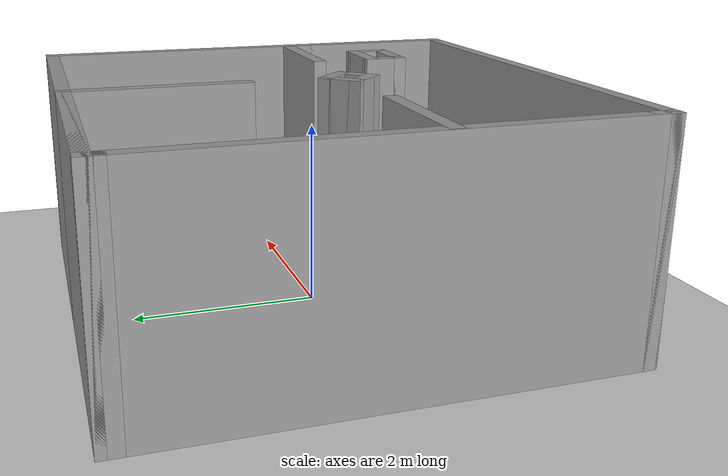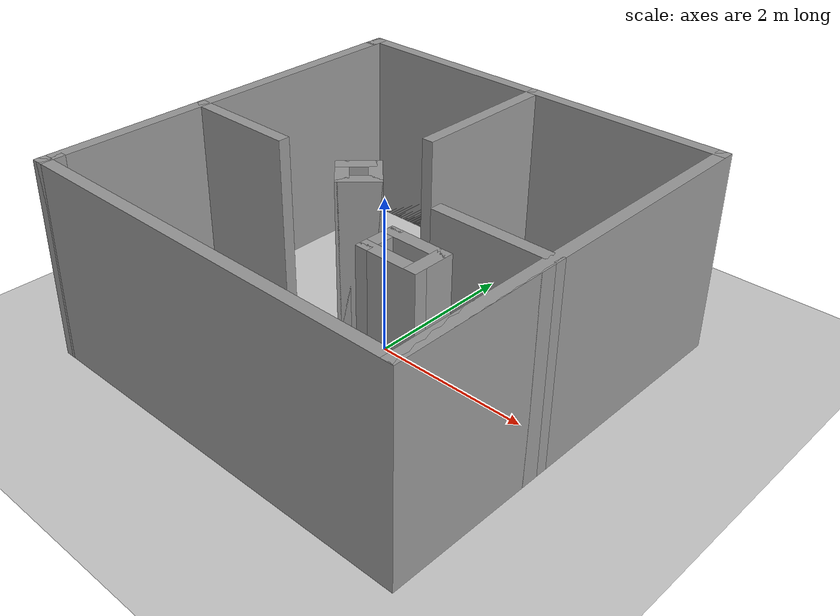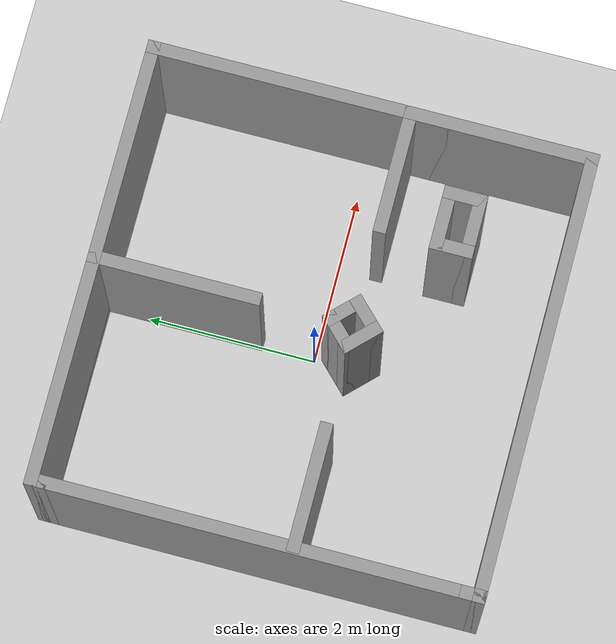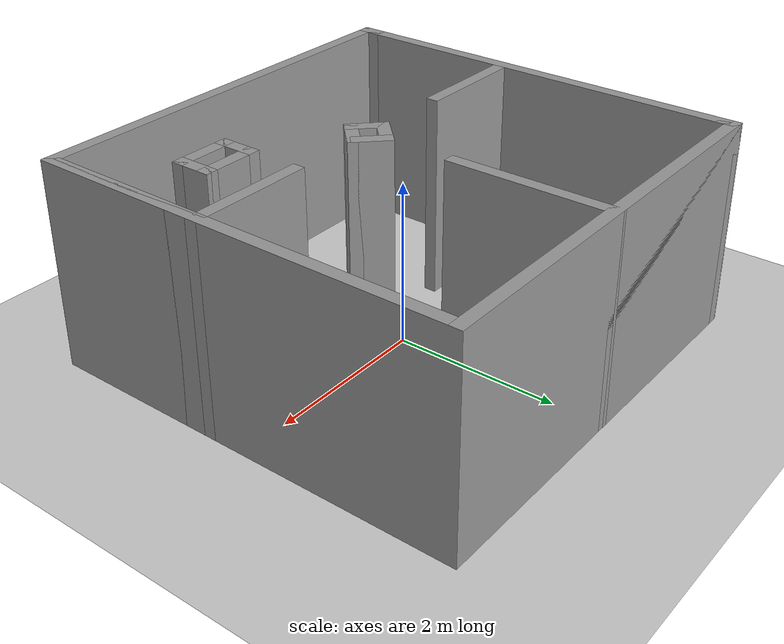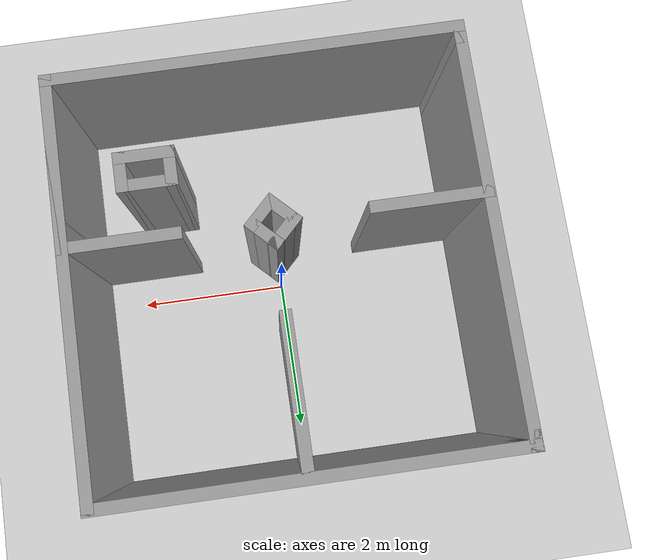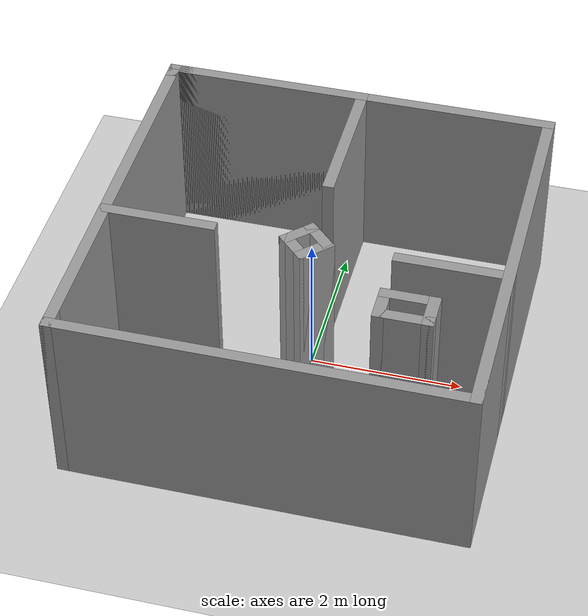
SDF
<sdf version="1.6">
 <world name="default">
  <light name="sun" type="directional">
   <pose>0 0 10 0 -0 0</pose>
   <diffuse>0.8 0.8 0.8 1</diffuse>
   <specular>0.2 0.2 0.2 1</specular>
   <attenuation>
    <range>1000</range>
    <constant>0.9</constant>
    <linear>0.01</linear>
    <quadratic>0.001</quadratic>
   </attenuation>
   <direction>-0.5 0.1 -0.9</direction>
  </light>
  <model name="ground_plane">
   <static>1</static>
   <link name="link">
    <collision name="collision">
     <geometry><plane><normal>0 0 1</normal><size>100 100</size></plane></geometry>
     <surface><friction><ode><mu>100</mu><mu2>50</mu2></ode></friction></surface>
    </collision>
    <visual name="visual">
     <cast_shadows>0</cast_shadows>
     <geometry><plane><normal>0 0 1</normal><size>100 100</size></plane></geometry>
     <material>
      <script><uri>file://media/materials/scripts/gazebo.material</uri><name>Gazebo/Grey</name></script>
     </material>
    </visual>
   </link>
  </model>
  <gravity>0 0 -9.8</gravity>
  <magnetic_field>6e-06 2.3e-05 -4.2e-05</magnetic_field>
  <atmosphere type="adiabatic"/>
  <physics name="default_physics" default="0" type="ode">
   <max_step_size>0.001</max_step_size>
   <real_time_factor>1</real_time_factor>
   <real_time_update_rate>1000</real_time_update_rate>
  </physics>
  <scene><ambient>0.4 0.4 0.4 1</ambient><background>0.7 0.7 0.7 1</background><shadows>1</shadows></scene>
  <audio><device>default</device></audio>
  <spherical_coordinates>
   <surface_model>EARTH_WGS84</surface_model>
   <latitude_deg>0</latitude_deg>
   <longitude_deg>0</longitude_deg>
   <elevation>0</elevation>
   <heading_deg>0</heading_deg>
  </spherical_coordinates>
  <model name="world_match2022615">
   <link name="Wall_0">
    <collision name="Wall_0_Collision">
     <geometry><box><size>5 0.15 2.5</size></box></geometry>
     <pose>0 0 1.25 0 -0 0</pose>
    </collision>
    <visual name="Wall_0_Visual">
     <pose>0 0 1.25 0 -0 0</pose>
     <geometry><box><size>5 0.15 2.5</size></box></geometry>
     <material>
      <script><uri>file://media/materials/scripts/gazebo.material</uri><name>Gazebo/Grey</name></script>
      <ambient>1 1 1 1</ambient>
     </material>
     <meta><layer>0</layer></meta>
    </visual>
    <pose>-2.55 0.025 0 0 -0 -1.5708</pose>
   </link>
   <link name="Wall_10">
    <collision name="Wall_10_Collision">
     <geometry><box><size>5.25 0.15 2.5</size></box></geometry>
     <pose>0 0 1.25 0 -0 0</pose>
    </collision>
    <visual name="Wall_10_Visual">
     <pose>0 0 1.25 0 -0 0</pose>
     <geometry><box><size>5.25 0.15 2.5</size></box></geometry>
     <material>
      <script><uri>file://media/materials/scripts/gazebo.material</uri><name>Gazebo/Grey</name></script>
      <ambient>1 1 1 1</ambient>
     </material>
     <meta><layer>0</layer></meta>
    </visual>
    <pose>0 2.55 0 0 -0 0</pose>
   </link>
   <link name="Wall_12">
    <collision name="Wall_12_Collision">
     <geometry><box><size>5.25 0.15 2.5</size></box></geometry>
     <pose>0 0 1.25 0 -0 0</pose>
    </collision>
    <visual name="Wall_12_Visual">
     <pose>0 0 1.25 0 -0 0</pose>
     <geometry><box><size>5.25 0.15 2.5</size></box></geometry>
     <material>
      <script><uri>file://media/materials/scripts/gazebo.material</uri><name>Gazebo/Grey</name></script>
      <ambient>1 1 1 1</ambient>
     </material>
     <meta><layer>0</layer></meta>
    </visual>
    <pose>2.55 0 0 0 -0 -1.5708</pose>
   </link>
   <link name="Wall_13">
    <collision name="Wall_13_Collision">
     <geometry><box><size>5.25 0.15 2.5</size></box></geometry>
     <pose>0 0 1.25 0 -0 0</pose>
    </collision>
    <visual name="Wall_13_Visual">
     <pose>0 0 1.25 0 -0 0</pose>
     <geometry><box><size>5.25 0.15 2.5</size></box></geometry>
     <material>
      <script><uri>file://media/materials/scripts/gazebo.material</uri><name>Gazebo/Grey</name></script>
      <ambient>1 1 1 1</ambient>
     </material>
     <meta><layer>0</layer></meta>
    </visual>
    <pose>0 -2.55 0 0 -0 3.14159</pose>
   </link>
   <link name="Wall_14">
    <collision name="Wall_14_Collision">
     <geometry><box><size>0.15 0.15 2.5</size></box></geometry>
     <pose>0 0 1.25 0 -0 0</pose>
    </collision>
    <visual name="Wall_14_Visual">
     <pose>0 0 1.25 0 -0 0</pose>
     <geometry><box><size>0.15 0.15 2.5</size></box></geometry>
     <material>
      <script><uri>file://media/materials/scripts/gazebo.material</uri><name>Gazebo/Grey</name></script>
      <ambient>1 1 1 1</ambient>
     </material>
     <meta><layer>0</layer></meta>
    </visual>
    <pose>-2.55 -2.55 0 0 -0 0</pose>
   </link>
   <link name="Wall_15">
    <collision name="Wall_15_Collision">
     <geometry><box><size>0.3 0.15 2.5</size></box></geometry>
     <pose>0 0 1.25 0 -0 0</pose>
    </collision>
    <visual name="Wall_15_Visual">
     <pose>0 0 1.25 0 -0 0</pose>
     <geometry><box><size>0.3 0.15 2.5</size></box></geometry>
     <material>
      <script><uri>file://media/materials/scripts/gazebo.material</uri><name>Gazebo/Grey</name></script>
      <ambient>1 1 1 1</ambient>
     </material>
     <meta><layer>0</layer></meta>
    </visual>
    <pose>-2.55 -2.475 0 0 -0 1.5708</pose>
   </link>
   <link name="Wall_17">
    <collision name="Wall_17_Collision">
     <geometry><box><size>2.75 0.15 2.5</size></box></geometry>
     <pose>0 0 1.25 0 -0 0</pose>
    </collision>
    <visual name="Wall_17_Visual">
     <pose>0 0 1.25 0 -0 0</pose>
     <geometry><box><size>2.75 0.15 2.5</size></box></geometry>
     <material>
      <script><uri>file://media/materials/scripts/gazebo.material</uri><name>Gazebo/Grey</name></script>
      <ambient>1 1 1 1</ambient>
     </material>
     <meta><layer>0</layer></meta>
    </visual>
    <pose>-1.25 2.55 0 0 -0 0</pose>
   </link>
   <link name="Wall_18">
    <collision name="Wall_18_Collision">
     <geometry><box><size>2 0.15 2.5</size></box></geometry>
     <pose>0 0 1.25 0 -0 0</pose>
    </collision>
    <visual name="Wall_18_Visual">
     <pose>0 0 1.25 0 -0 0</pose>
     <geometry><box><size>2 0.15 2.5</size></box></geometry>
     <material>
      <script><uri>file://media/materials/scripts/gazebo.material</uri><name>Gazebo/Grey</name></script>
      <ambient>1 1 1 1</ambient>
     </material>
     <meta><layer>0</layer></meta>
    </visual>
    <pose>0.05 1.625 0 0 -0 -1.5708</pose>
   </link>
   <link name="Wall_20">
    <collision name="Wall_20_Collision">
     <geometry><box><size>2.25 0.15 2.5</size></box></geometry>
     <pose>0 0 1.25 0 -0 0</pose>
    </collision>
    <visual name="Wall_20_Visual">
     <pose>0 0 1.25 0 -0 0</pose>
     <geometry><box><size>2.25 0.15 2.5</size></box></geometry>
     <material>
      <script><uri>file://media/materials/scripts/gazebo.material</uri><name>Gazebo/Grey</name></script>
      <ambient>1 1 1 1</ambient>
     </material>
     <meta><layer>0</layer></meta>
    </visual>
    <pose>2.55 -1.5 0 0 -0 1.5708</pose>
   </link>
   <link name="Wall_23">
    <collision name="Wall_23_Collision">
     <geometry><box><size>1.5 0.15 2.5</size></box></geometry>
     <pose>0 0 1.25 0 -0 0</pose>
    </collision>
    <visual name="Wall_23_Visual">
     <pose>0 0 1.25 0 -0 0</pose>
     <geometry><box><size>1.5 0.15 2.5</size></box></geometry>
     <material>
      <script><uri>file://media/materials/scripts/gazebo.material</uri><name>Gazebo/Grey</name></script>
      <ambient>1 1 1 1</ambient>
     </material>
     <meta><layer>0</layer></meta>
    </visual>
    <pose>1.875 -0.45 0 0 -0 3.14159</pose>
   </link>
   <link name="Wall_25">
    <collision name="Wall_25_Collision">
     <geometry><box><size>1.5 0.15 2.5</size></box></geometry>
     <pose>0 0 1.25 0 -0 0</pose>
    </collision>
    <visual name="Wall_25_Visual">
     <pose>0 0 1.25 0 -0 0</pose>
     <geometry><box><size>1.5 0.15 2.5</size></box></geometry>
     <material>
      <script><uri>file://media/materials/scripts/gazebo.material</uri><name>Gazebo/Grey</name></script>
      <ambient>1 1 1 1</ambient>
     </material>
     <meta><layer>0</layer></meta>
    </visual>
    <pose>-1.85769 -0.439169 0 0 -0 0</pose>
   </link>
   <link name="Wall_27">
    <collision name="Wall_27_Collision">
     <geometry><box><size>0.5 0.15 2.5</size></box></geometry>
     <pose>0 0 1.25 0 -0 0</pose>
    </collision>
    <visual name="Wall_27_Visual">
     <pose>0 0 1.25 0 -0 0</pose>
     <geometry><box><size>0.5 0.15 2.5</size></box></geometry>
     <material>
      <script><uri>file://media/materials/scripts/gazebo.material</uri><name>Gazebo/Grey</name></script>
      <ambient>1 1 1 1</ambient>
     </material>
     <meta><layer>0</layer></meta>
    </visual>
    <pose>-0.081015 -0.553791 0 0 -0 -0.785398</pose>
   </link>
   <link name="Wall_28">
    <collision name="Wall_28_Collision">
     <geometry><box><size>0.5 0.15 2.5</size></box></geometry>
     <pose>0 0 1.25 0 -0 0</pose>
    </collision>
    <visual name="Wall_28_Visual">
     <pose>0 0 1.25 0 -0 0</pose>
     <geometry><box><size>0.5 0.15 2.5</size></box></geometry>
     <material>
      <script><uri>file://media/materials/scripts/gazebo.material</uri><name>Gazebo/Grey</name></script>
      <ambient>1 1 1 1</ambient>
     </material>
     <meta><layer>0</layer></meta>
    </visual>
    <pose>0.166472 -0.553791 0 0 -0 0.785398</pose>
   </link>
   <link name="Wall_29">
    <collision name="Wall_29_Collision">
     <geometry><box><size>0.5 0.15 2.5</size></box></geometry>
     <pose>0 0 1.25 0 -0 0</pose>
    </collision>
    <visual name="Wall_29_Visual">
     <pose>0 0 1.25 0 -0 0</pose>
     <geometry><box><size>0.5 0.15 2.5</size></box></geometry>
     <material>
      <script><uri>file://media/materials/scripts/gazebo.material</uri><name>Gazebo/Grey</name></script>
      <ambient>1 1 1 1</ambient>
     </material>
     <meta><layer>0</layer></meta>
    </visual>
    <pose>0.166472 -0.306304 0 0 -0 2.35619</pose>
   </link>
   <link name="Wall_30">
    <collision name="Wall_30_Collision">
     <geometry><box><size>0.5 0.15 2.5</size></box></geometry>
     <pose>0 0 1.25 0 -0 0</pose>
    </collision>
    <visual name="Wall_30_Visual">
     <pose>0 0 1.25 0 -0 0</pose>
     <geometry><box><size>0.5 0.15 2.5</size></box></geometry>
     <material>
      <script><uri>file://media/materials/scripts/gazebo.material</uri><name>Gazebo/Grey</name></script>
      <ambient>1 1 1 1</ambient>
     </material>
     <meta><layer>0</layer></meta>
    </visual>
    <pose>-0.081015 -0.306304 0 0 -0 -2.35619</pose>
   </link>
   <link name="Wall_32">
    <collision name="Wall_32_Collision">
     <geometry><box><size>0.75 0.15 2.5</size></box></geometry>
     <pose>0 0 1.25 0 -0 0</pose>
    </collision>
    <visual name="Wall_32_Visual">
     <pose>0 0 1.25 0 -0 0</pose>
     <geometry><box><size>0.75 0.15 2.5</size></box></geometry>
     <material>
      <script><uri>file://media/materials/scripts/gazebo.material</uri><name>Gazebo/Grey</name></script>
      <ambient>1 1 1 1</ambient>
     </material>
     <meta><layer>0</layer></meta>
    </visual>
    <pose>1.46968 -1.10364 0 0 -0 0</pose>
   </link>
   <link name="Wall_33">
    <collision name="Wall_33_Collision">
     <geometry><box><size>0.5 0.15 2.5</size></box></geometry>
     <pose>0 0 1.25 0 -0 0</pose>
    </collision>
    <visual name="Wall_33_Visual">
     <pose>0 0 1.25 0 -0 0</pose>
     <geometry><box><size>0.5 0.15 2.5</size></box></geometry>
     <material>
      <script><uri>file://media/materials/scripts/gazebo.material</uri><name>Gazebo/Grey</name></script>
      <ambient>1 1 1 1</ambient>
     </material>
     <meta><layer>0</layer></meta>
    </visual>
    <pose>1.76968 -1.27864 0 0 -0 -1.5708</pose>
   </link>
   <link name="Wall_34">
    <collision name="Wall_34_Collision">
     <geometry><box><size>0.75 0.15 2.5</size></box></geometry>
     <pose>0 0 1.25 0 -0 0</pose>
    </collision>
    <visual name="Wall_34_Visual">
     <pose>0 0 1.25 0 -0 0</pose>
     <geometry><box><size>0.75 0.15 2.5</size></box></geometry>
     <material>
      <script><uri>file://media/materials/scripts/gazebo.material</uri><name>Gazebo/Grey</name></script>
      <ambient>1 1 1 1</ambient>
     </material>
     <meta><layer>0</layer></meta>
    </visual>
    <pose>1.46968 -1.45364 0 0 -0 3.14159</pose>
   </link>
   <link name="Wall_35">
    <collision name="Wall_35_Collision">
     <geometry><box><size>0.5 0.15 2.5</size></box></geometry>
     <pose>0 0 1.25 0 -0 0</pose>
    </collision>
    <visual name="Wall_35_Visual">
     <pose>0 0 1.25 0 -0 0</pose>
     <geometry><box><size>0.5 0.15 2.5</size></box></geometry>
     <material>
      <script><uri>file://media/materials/scripts/gazebo.material</uri><name>Gazebo/Grey</name></script>
      <ambient>1 1 1 1</ambient>
     </material>
     <meta><layer>0</layer></meta>
    </visual>
    <pose>1.16968 -1.27864 0 0 -0 1.5708</pose>
   </link>
   <link name="Wall_8">
    <collision name="Wall_8_Collision">
     <geometry><box><size>0.15 0.15 2.5</size></box></geometry>
     <pose>0 0 1.25 0 -0 0</pose>
    </collision>
    <visual name="Wall_8_Visual">
     <pose>0 0 1.25 0 -0 0</pose>
     <geometry><box><size>0.15 0.15 2.5</size></box></geometry>
     <material>
      <script><uri>file://media/materials/scripts/gazebo.material</uri><name>Gazebo/Grey</name></script>
      <ambient>1 1 1 1</ambient>
     </material>
     <meta><layer>0</layer></meta>
    </visual>
    <pose>-2.55 2.45 0 0 -0 0</pose>
   </link>
   <link name="Wall_9">
    <collision name="Wall_9_Collision">
     <geometry><box><size>0.25 0.15 2.5</size></box></geometry>
     <pose>0 0 1.25 0 -0 0</pose>
    </collision>
    <visual name="Wall_9_Visual">
     <pose>0 0 1.25 0 -0 0</pose>
     <geometry><box><size>0.25 0.15 2.5</size></box></geometry>
     <material>
      <script><uri>file://media/materials/scripts/gazebo.material</uri><name>Gazebo/Grey</name></script>
      <ambient>1 1 1 1</ambient>
     </material>
     <meta><layer>0</layer></meta>
    </visual>
    <pose>-2.55 2.5 0 0 -0 1.5708</pose>
   </link>
   <static>1</static>
  </model>
 </world>
</sdf>
